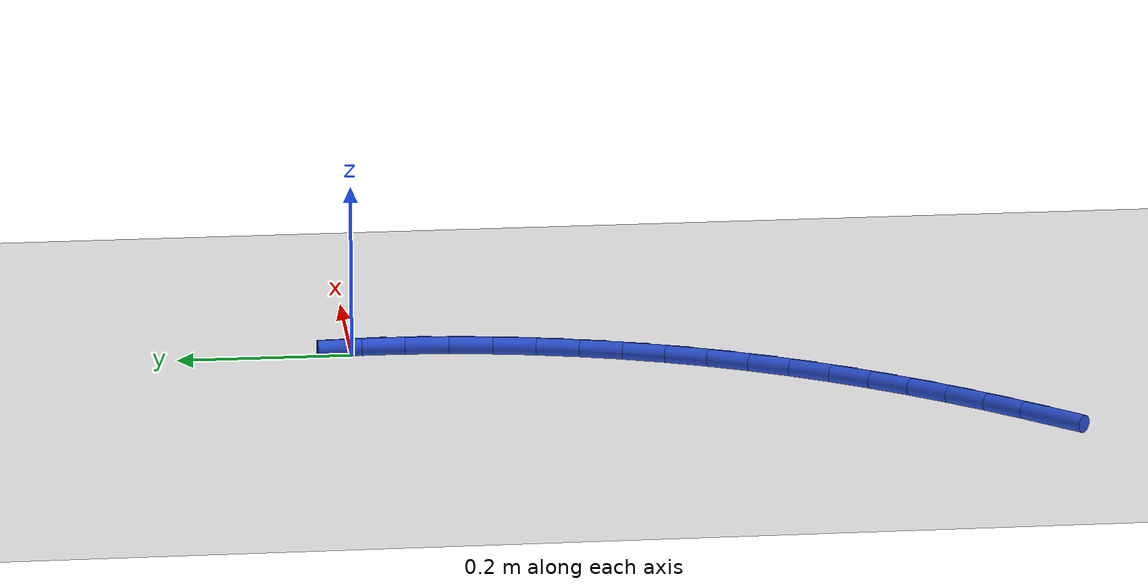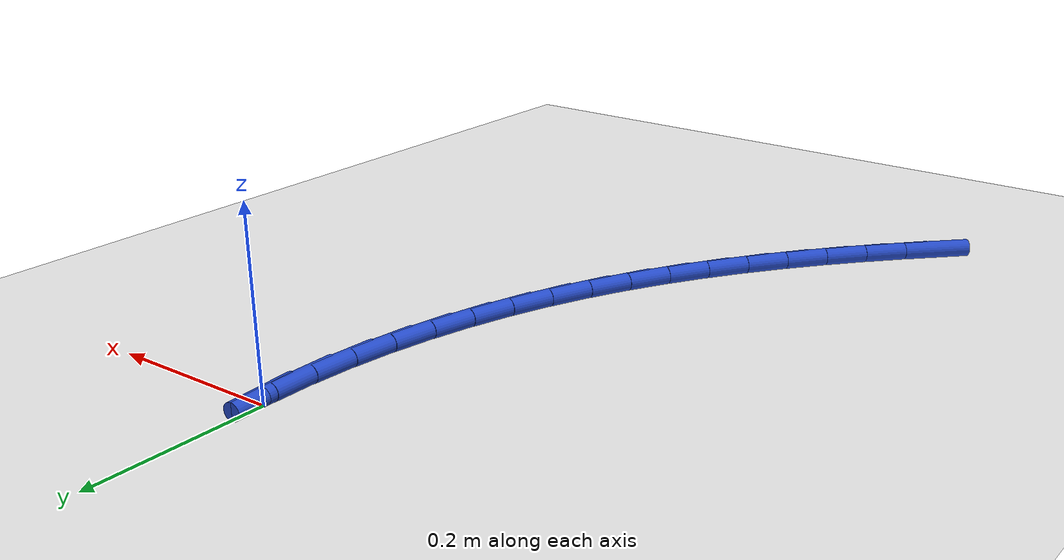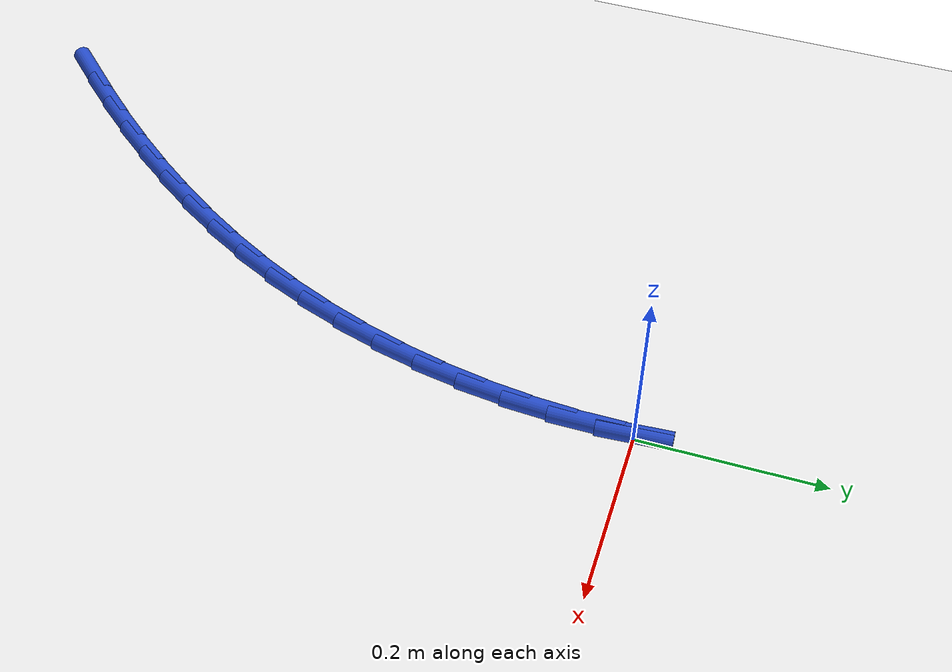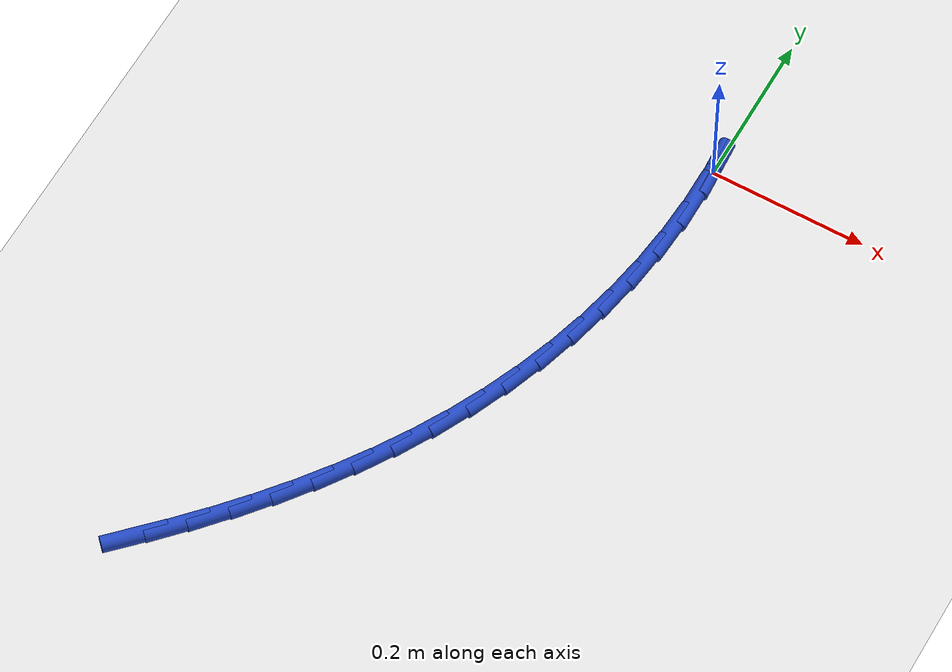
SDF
<sdf version="1.6">
 <world name="default">
  <model name="ground_plane">
   <static>1</static>
   <link name="link">
    <collision name="collision">
     <geometry><plane><normal>0 0 1</normal><size>100 100</size></plane></geometry>
     <surface><friction><ode><mu>100</mu><mu2>50</mu2></ode></friction></surface>
    </collision>
    <visual name="visual">
     <cast_shadows>0</cast_shadows>
     <geometry><plane><normal>0 0 1</normal><size>100 100</size></plane></geometry>
     <material>
      <script><uri>file://media/materials/scripts/gazebo.material</uri><name>Gazebo/WhiteGlow</name></script>
     </material>
    </visual>
   </link>
  </model>
  <model name="line">
   <link name="link_0">
    <pose>1.734723475976807e-17 8.326672684688674e-17 0.01 0 1.57 -1.5104639285865724</pose>
    <collision name="collision">
     <geometry><cylinder><radius>0.01</radius><length>0.08</length></cylinder></geometry>
    </collision>
    <visual name="visual">
     <material>
      <script><name>Gazebo/Blue</name><uri>file://media/materials/scripts/gazebo.material</uri></script>
     </material>
     <geometry><cylinder><radius>0.01</radius><length>0.08</length></cylinder></geometry>
    </visual>
   </link>
   <link name="link_133">
    <pose>-0.34339918548453385 -0.755672591314763 0.01 0 1.57 0.7945965581211064</pose>
    <collision name="collision">
     <geometry><cylinder><radius>0.01</radius><length>0.08</length></cylinder></geometry>
    </collision>
    <visual name="visual">
     <material>
      <script><name>Gazebo/Blue</name><uri>file://media/materials/scripts/gazebo.material</uri></script>
     </material>
     <geometry><cylinder><radius>0.01</radius><length>0.08</length></cylinder></geometry>
    </visual>
   </link>
   <link name="link_134">
    <pose>-0.30836290608661937 -0.7199857544290909 0.01 0 1.57 0.8248058378322034</pose>
    <collision name="collision">
     <geometry><cylinder><radius>0.01</radius><length>0.08</length></cylinder></geometry>
    </collision>
    <visual name="visual">
     <material>
      <script><name>Gazebo/Blue</name><uri>file://media/materials/scripts/gazebo.material</uri></script>
     </material>
     <geometry><cylinder><radius>0.01</radius><length>0.08</length></cylinder></geometry>
    </visual>
   </link>
   <link name="link_135">
    <pose>-0.2743259504824277 -0.6831546050374399 0.01 0 1.57 0.8578149389594766</pose>
    <collision name="collision">
     <geometry><cylinder><radius>0.01</radius><length>0.08</length></cylinder></geometry>
    </collision>
    <visual name="visual">
     <material>
      <script><name>Gazebo/Blue</name><uri>file://media/materials/scripts/gazebo.material</uri></script>
     </material>
     <geometry><cylinder><radius>0.01</radius><length>0.08</length></cylinder></geometry>
    </visual>
   </link>
   <link name="link_136">
    <pose>-0.2414737390272395 -0.645163135765558 0.01 0 1.57 0.8937635976781785</pose>
    <collision name="collision">
     <geometry><cylinder><radius>0.01</radius><length>0.08</length></cylinder></geometry>
    </collision>
    <visual name="visual">
     <material>
      <script><name>Gazebo/Blue</name><uri>file://media/materials/scripts/gazebo.material</uri></script>
     </material>
     <geometry><cylinder><radius>0.01</radius><length>0.08</length></cylinder></geometry>
    </visual>
   </link>
   <link name="link_137">
    <pose>-0.20999258199505405 -0.6059960411936295 0.01 0 1.57 0.9327843644715897</pose>
    <collision name="collision">
     <geometry><cylinder><radius>0.01</radius><length>0.08</length></cylinder></geometry>
    </collision>
    <visual name="visual">
     <material>
      <script><name>Gazebo/Blue</name><uri>file://media/materials/scripts/gazebo.material</uri></script>
     </material>
     <geometry><cylinder><radius>0.01</radius><length>0.08</length></cylinder></geometry>
    </visual>
   </link>
   <link name="link_138">
    <pose>-0.18006878965987022 -0.5656380159018382 0.01 0 1.57 0.9749960039827823</pose>
    <collision name="collision">
     <geometry><cylinder><radius>0.01</radius><length>0.08</length></cylinder></geometry>
    </collision>
    <visual name="visual">
     <material>
      <script><name>Gazebo/Blue</name><uri>file://media/materials/scripts/gazebo.material</uri></script>
     </material>
     <geometry><cylinder><radius>0.01</radius><length>0.08</length></cylinder></geometry>
    </visual>
   </link>
   <link name="link_139">
    <pose>-0.15188867229568567 -0.5240737544703661 0.01 0 1.57 1.0204917533935172</pose>
    <collision name="collision">
     <geometry><cylinder><radius>0.01</radius><length>0.08</length></cylinder></geometry>
    </collision>
    <visual name="visual">
     <material>
      <script><name>Gazebo/Blue</name><uri>file://media/materials/scripts/gazebo.material</uri></script>
     </material>
     <geometry><cylinder><radius>0.01</radius><length>0.08</length></cylinder></geometry>
    </visual>
   </link>
   <link name="link_140">
    <pose>-0.12563854017649986 -0.48128795147939807 0.01 0 1.57 1.0693252967734932</pose>
    <collision name="collision">
     <geometry><cylinder><radius>0.01</radius><length>0.08</length></cylinder></geometry>
    </collision>
    <visual name="visual">
     <material>
      <script><name>Gazebo/Blue</name><uri>file://media/materials/scripts/gazebo.material</uri></script>
     </material>
     <geometry><cylinder><radius>0.01</radius><length>0.08</length></cylinder></geometry>
    </visual>
   </link>
   <link name="link_141">
    <pose>-0.10150470357631036 -0.4372653015091158 0.01 0 1.57 1.1214754973994348</pose>
    <collision name="collision">
     <geometry><cylinder><radius>0.01</radius><length>0.08</length></cylinder></geometry>
    </collision>
    <visual name="visual">
     <material>
      <script><name>Gazebo/Blue</name><uri>file://media/materials/scripts/gazebo.material</uri></script>
     </material>
     <geometry><cylinder><radius>0.01</radius><length>0.08</length></cylinder></geometry>
    </visual>
   </link>
   <link name="link_142">
    <pose>-0.07967287405744718 -0.3919914968532376 0.01 0 1.57 1.1756648267463898</pose>
    <collision name="collision">
     <geometry><cylinder><radius>0.01</radius><length>0.08</length></cylinder></geometry>
    </collision>
    <visual name="visual">
     <material>
      <script><name>Gazebo/Blue</name><uri>file://media/materials/scripts/gazebo.material</uri></script>
     </material>
     <geometry><cylinder><radius>0.01</radius><length>0.08</length></cylinder></geometry>
    </visual>
   </link>
   <link name="link_143">
    <pose>-0.060289917312439684 -0.3455169638870903 0.01 0 1.57 1.2300664720513264</pose>
    <collision name="collision">
     <geometry><cylinder><radius>0.01</radius><length>0.08</length></cylinder></geometry>
    </collision>
    <visual name="visual">
     <material>
      <script><name>Gazebo/Blue</name><uri>file://media/materials/scripts/gazebo.material</uri></script>
     </material>
     <geometry><cylinder><radius>0.01</radius><length>0.08</length></cylinder></geometry>
    </visual>
   </link>
   <link name="link_144">
    <pose>-0.043440744109358255 -0.29799537278402743 0.01 0 1.57 1.2847632828969908</pose>
    <collision name="collision">
     <geometry><cylinder><radius>0.01</radius><length>0.08</length></cylinder></geometry>
    </collision>
    <visual name="visual">
     <material>
      <script><name>Gazebo/Blue</name><uri>file://media/materials/scripts/gazebo.material</uri></script>
     </material>
     <geometry><cylinder><radius>0.01</radius><length>0.08</length></cylinder></geometry>
    </visual>
   </link>
   <link name="link_145">
    <pose>-0.029204726604072636 -0.2495896234495785 0.01 0 1.57 1.3400105460928318</pose>
    <collision name="collision">
     <geometry><cylinder><radius>0.01</radius><length>0.08</length></cylinder></geometry>
    </collision>
    <visual name="visual">
     <material>
      <script><name>Gazebo/Blue</name><uri>file://media/materials/scripts/gazebo.material</uri></script>
     </material>
     <geometry><cylinder><radius>0.01</radius><length>0.08</length></cylinder></geometry>
    </visual>
   </link>
   <link name="link_146">
    <pose>-0.017661236952451587 -0.2004626157892695 0.01 0 1.57 1.3960541759469784</pose>
    <collision name="collision">
     <geometry><cylinder><radius>0.01</radius><length>0.08</length></cylinder></geometry>
    </collision>
    <visual name="visual">
     <material>
      <script><name>Gazebo/Blue</name><uri>file://media/materials/scripts/gazebo.material</uri></script>
     </material>
     <geometry><cylinder><radius>0.01</radius><length>0.08</length></cylinder></geometry>
    </visual>
   </link>
   <link name="link_147">
    <pose>-0.0088896473103646 -0.15077724970862924 0.01 0 1.57 1.453127179481888</pose>
    <collision name="collision">
     <geometry><cylinder><radius>0.01</radius><length>0.08</length></cylinder></geometry>
    </collision>
    <visual name="visual">
     <material>
      <script><name>Gazebo/Blue</name><uri>file://media/materials/scripts/gazebo.material</uri></script>
     </material>
     <geometry><cylinder><radius>0.01</radius><length>0.08</length></cylinder></geometry>
    </visual>
   </link>
   <link name="link_148">
    <pose>-0.0029693298336809382 -0.10069642511318622 0.01 0 1.57 1.511445082731169</pose>
    <collision name="collision">
     <geometry><cylinder><radius>0.01</radius><length>0.08</length></cylinder></geometry>
    </collision>
    <visual name="visual">
     <material>
      <script><name>Gazebo/Blue</name><uri>file://media/materials/scripts/gazebo.material</uri></script>
     </material>
     <geometry><cylinder><radius>0.01</radius><length>0.08</length></cylinder></geometry>
    </visual>
   </link>
   <link name="link_149">
    <pose>2.0343321730380975e-05 -0.050383041908466535 0.01 0 1.57 -1.5703925536233254</pose>
    <collision name="collision">
     <geometry><cylinder><radius>0.01</radius><length>0.08</length></cylinder></geometry>
    </collision>
    <visual name="visual">
     <material>
      <script><name>Gazebo/Blue</name><uri>file://media/materials/scripts/gazebo.material</uri></script>
     </material>
     <geometry><cylinder><radius>0.01</radius><length>0.08</length></cylinder></geometry>
    </visual>
   </link>
   <link name="link_150">
    <pose>4.683753385137379e-17 2.914335439641036e-16 0.01 0 1.57 -1.5090387258842015</pose>
    <collision name="collision">
     <geometry><cylinder><radius>0.01</radius><length>0.08</length></cylinder></geometry>
    </collision>
    <visual name="visual">
     <material>
      <script><name>Gazebo/Blue</name><uri>file://media/materials/scripts/gazebo.material</uri></script>
     </material>
     <geometry><cylinder><radius>0.01</radius><length>0.08</length></cylinder></geometry>
    </visual>
   </link>
  </model>
 </world>
</sdf>
